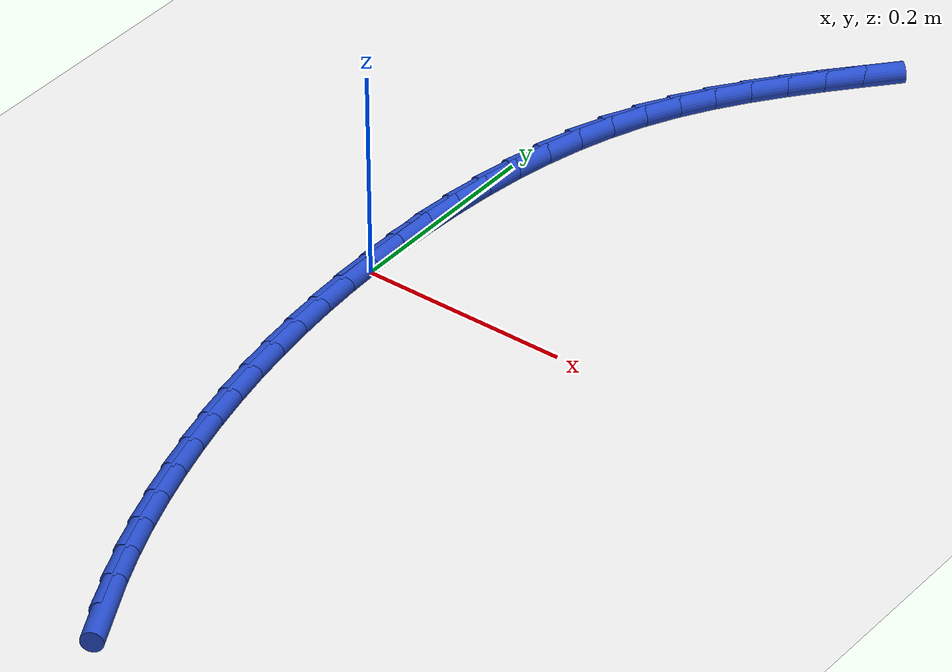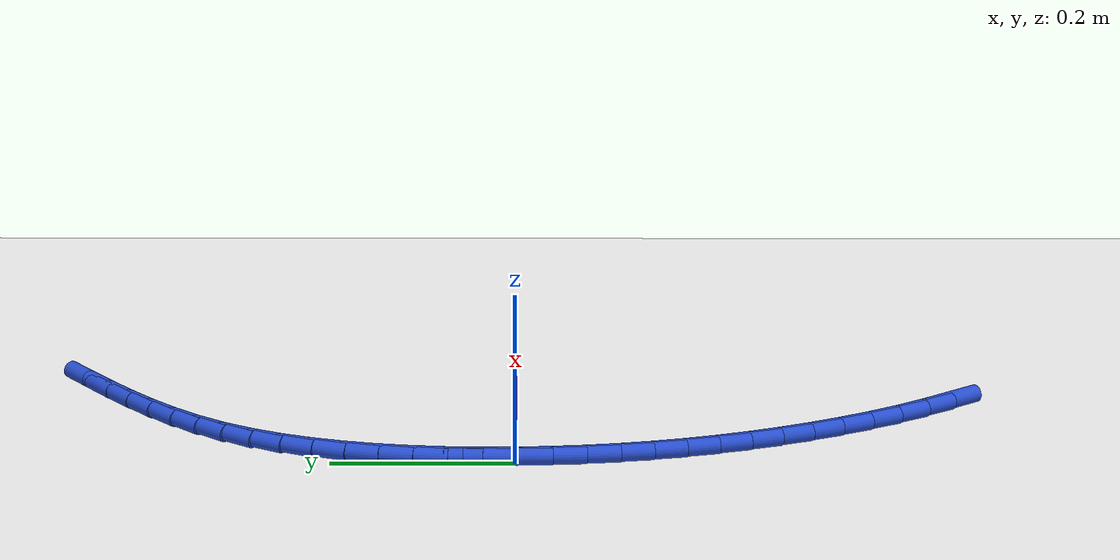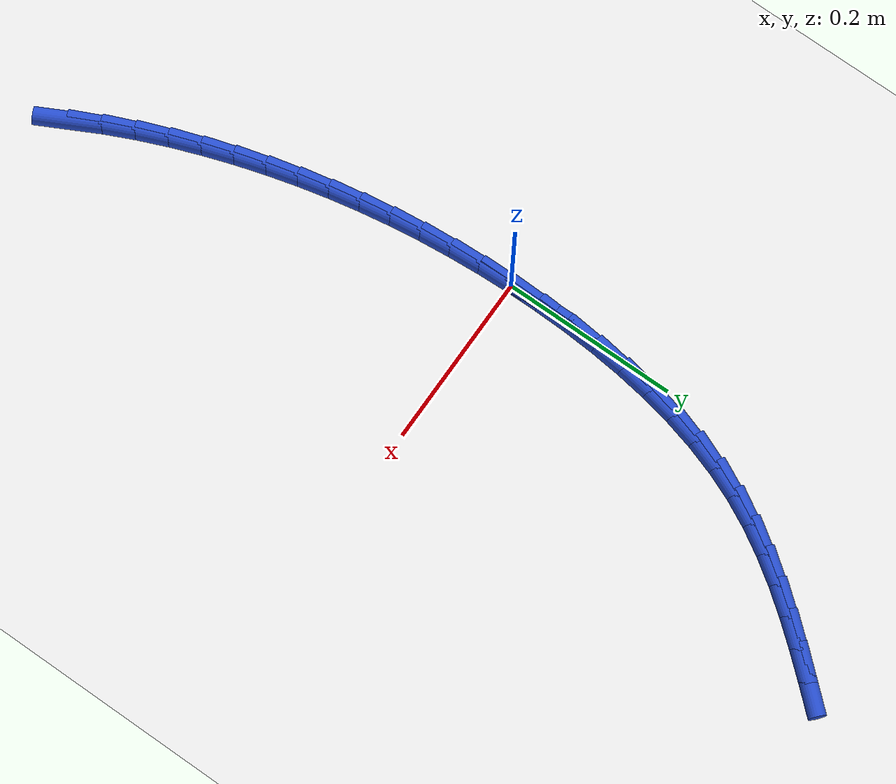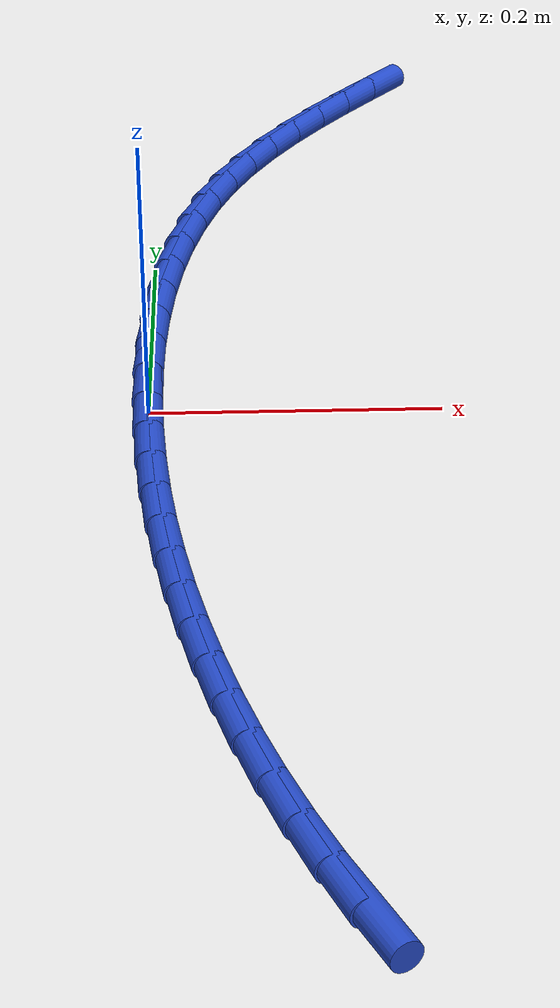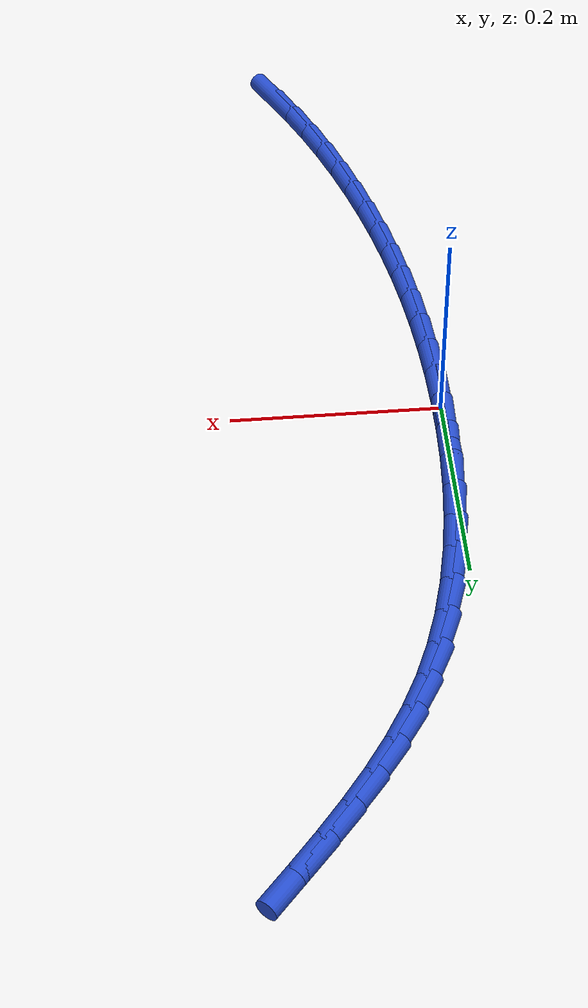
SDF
<sdf version="1.6">
 <world name="default">
  <model name="ground_plane">
   <static>1</static>
   <link name="link">
    <collision name="collision">
     <geometry><plane><normal>0 0 1</normal><size>100 100</size></plane></geometry>
     <surface><friction><ode><mu>100</mu><mu2>50</mu2></ode></friction></surface>
    </collision>
    <visual name="visual">
     <cast_shadows>0</cast_shadows>
     <geometry><plane><normal>0 0 1</normal><size>100 100</size></plane></geometry>
     <material>
      <script><uri>file://media/materials/scripts/gazebo.material</uri><name>Gazebo/WhiteGlow</name></script>
     </material>
    </visual>
   </link>
  </model>
  <model name="line">
   <link name="link_0">
    <pose>2.6020852139652106e-17 -9.71445146547012e-17 0.01 0 1.57 -1.5621831902232952</pose>
    <collision name="collision">
     <geometry><cylinder><radius>0.01</radius><length>0.08</length></cylinder></geometry>
    </collision>
    <visual name="visual">
     <material>
      <script><name>Gazebo/Blue</name><uri>file://media/materials/scripts/gazebo.material</uri></script>
     </material>
     <geometry><cylinder><radius>0.01</radius><length>0.08</length></cylinder></geometry>
    </visual>
   </link>
   <link name="link_1">
    <pose>-0.00031968977856093643 0.03711561640169112 0.01 0 1.57 1.5464420975467457</pose>
    <collision name="collision">
     <geometry><cylinder><radius>0.01</radius><length>0.08</length></cylinder></geometry>
    </collision>
    <visual name="visual">
     <material>
      <script><name>Gazebo/Blue</name><uri>file://media/materials/scripts/gazebo.material</uri></script>
     </material>
     <geometry><cylinder><radius>0.01</radius><length>0.08</length></cylinder></geometry>
    </visual>
   </link>
   <link name="link_2">
    <pose>0.0005880509570765188 0.07438065362917015 0.01 0 1.57 1.509807310604159</pose>
    <collision name="collision">
     <geometry><cylinder><radius>0.01</radius><length>0.08</length></cylinder></geometry>
    </collision>
    <visual name="visual">
     <material>
      <script><name>Gazebo/Blue</name><uri>file://media/materials/scripts/gazebo.material</uri></script>
     </material>
     <geometry><cylinder><radius>0.01</radius><length>0.08</length></cylinder></geometry>
    </visual>
   </link>
   <link name="link_3">
    <pose>0.002859856134426444 0.11158387216424501 0.01 0 1.57 1.4689970682819233</pose>
    <collision name="collision">
     <geometry><cylinder><radius>0.01</radius><length>0.08</length></cylinder></geometry>
    </collision>
    <visual name="visual">
     <material>
      <script><name>Gazebo/Blue</name><uri>file://media/materials/scripts/gazebo.material</uri></script>
     </material>
     <geometry><cylinder><radius>0.01</radius><length>0.08</length></cylinder></geometry>
    </visual>
   </link>
   <link name="link_4">
    <pose>0.006632359681002883 0.14851403248872366 0.01 0 1.57 1.4234374467433104</pose>
    <collision name="collision">
     <geometry><cylinder><radius>0.01</radius><length>0.08</length></cylinder></geometry>
    </collision>
    <visual name="visual">
     <material>
      <script><name>Gazebo/Blue</name><uri>file://media/materials/scripts/gazebo.material</uri></script>
     </material>
     <geometry><cylinder><radius>0.01</radius><length>0.08</length></cylinder></geometry>
    </visual>
   </link>
   <link name="link_5">
    <pose>0.012042195524319888 0.18495989508441416 0.01 0 1.57 1.3724935437011863</pose>
    <collision name="collision">
     <geometry><cylinder><radius>0.01</radius><length>0.08</length></cylinder></geometry>
    </collision>
    <visual name="visual">
     <material>
      <script><name>Gazebo/Blue</name><uri>file://media/materials/scripts/gazebo.material</uri></script>
     </material>
     <geometry><cylinder><radius>0.01</radius><length>0.08</length></cylinder></geometry>
    </visual>
   </link>
   <link name="link_6">
    <pose>0.01922599759189152 0.22071022043312447 0.01 0 1.57 1.3154854739663269</pose>
    <collision name="collision">
     <geometry><cylinder><radius>0.01</radius><length>0.08</length></cylinder></geometry>
    </collision>
    <visual name="visual">
     <material>
      <script><name>Gazebo/Blue</name><uri>file://media/materials/scripts/gazebo.material</uri></script>
     </material>
     <geometry><cylinder><radius>0.01</radius><length>0.08</length></cylinder></geometry>
    </visual>
   </link>
   <link name="link_7">
    <pose>0.02832039981123179 0.2555537690166625 0.01 0 1.57 1.2517222985318488</pose>
    <collision name="collision">
     <geometry><cylinder><radius>0.01</radius><length>0.08</length></cylinder></geometry>
    </collision>
    <visual name="visual">
     <material>
      <script><name>Gazebo/Blue</name><uri>file://media/materials/scripts/gazebo.material</uri></script>
     </material>
     <geometry><cylinder><radius>0.01</radius><length>0.08</length></cylinder></geometry>
    </visual>
   </link>
   <link name="link_8">
    <pose>0.0394620361098548 0.2892793013168364 0.01 0 1.57 1.180562507635391</pose>
    <collision name="collision">
     <geometry><cylinder><radius>0.01</radius><length>0.08</length></cylinder></geometry>
    </collision>
    <visual name="visual">
     <material>
      <script><name>Gazebo/Blue</name><uri>file://media/materials/scripts/gazebo.material</uri></script>
     </material>
     <geometry><cylinder><radius>0.01</radius><length>0.08</length></cylinder></geometry>
    </visual>
   </link>
   <link name="link_9">
    <pose>0.05278754041527457 0.32167557781545414 0.01 0 1.57 1.1036009828839137</pose>
    <collision name="collision">
     <geometry><cylinder><radius>0.01</radius><length>0.08</length></cylinder></geometry>
    </collision>
    <visual name="visual">
     <material>
      <script><name>Gazebo/Blue</name><uri>file://media/materials/scripts/gazebo.material</uri></script>
     </material>
     <geometry><cylinder><radius>0.01</radius><length>0.08</length></cylinder></geometry>
    </visual>
   </link>
   <link name="link_10">
    <pose>0.06838152044542657 0.35258886909075804 0.01 0 1.57 1.03238909465765</pose>
    <collision name="collision">
     <geometry><cylinder><radius>0.01</radius><length>0.08</length></cylinder></geometry>
    </collision>
    <visual name="visual">
     <material>
      <script><name>Gazebo/Blue</name><uri>file://media/materials/scripts/gazebo.material</uri></script>
     </material>
     <geometry><cylinder><radius>0.01</radius><length>0.08</length></cylinder></geometry>
    </visual>
   </link>
   <link name="link_11">
    <pose>0.0860508248733353 0.3821724823009723 0.01 0 1.57 0.9718745766253265</pose>
    <collision name="collision">
     <geometry><cylinder><radius>0.01</radius><length>0.08</length></cylinder></geometry>
    </collision>
    <visual name="visual">
     <material>
      <script><name>Gazebo/Blue</name><uri>file://media/materials/scripts/gazebo.material</uri></script>
     </material>
     <geometry><cylinder><radius>0.01</radius><length>0.08</length></cylinder></geometry>
    </visual>
   </link>
   <link name="link_12">
    <pose>0.10550998516170162 0.4106817726241794 0.01 0 1.57 0.9227875499274827</pose>
    <collision name="collision">
     <geometry><cylinder><radius>0.01</radius><length>0.08</length></cylinder></geometry>
    </collision>
    <visual name="visual">
     <material>
      <script><name>Gazebo/Blue</name><uri>file://media/materials/scripts/gazebo.material</uri></script>
     </material>
     <geometry><cylinder><radius>0.01</radius><length>0.08</length></cylinder></geometry>
    </visual>
   </link>
   <link name="link_13">
    <pose>0.12647347104322018 0.4383721634751966 0.01 0 1.57 0.8853421768963635</pose>
    <collision name="collision">
     <geometry><cylinder><radius>0.01</radius><length>0.08</length></cylinder></geometry>
    </collision>
    <visual name="visual">
     <material>
      <script><name>Gazebo/Blue</name><uri>file://media/materials/scripts/gazebo.material</uri></script>
     </material>
     <geometry><cylinder><radius>0.01</radius><length>0.08</length></cylinder></geometry>
    </visual>
   </link>
   <link name="link_14">
    <pose>0.14865575225058542 0.4654990782688404 0.01 0 1.57 0.8594262456779417</pose>
    <collision name="collision">
     <geometry><cylinder><radius>0.01</radius><length>0.08</length></cylinder></geometry>
    </collision>
    <visual name="visual">
     <material>
      <script><name>Gazebo/Blue</name><uri>file://media/materials/scripts/gazebo.material</uri></script>
     </material>
     <geometry><cylinder><radius>0.01</radius><length>0.08</length></cylinder></geometry>
    </visual>
   </link>
   <link name="link_15">
    <pose>0.17177129851649212 0.49231794041992805 0.01 0 1.57 0.8447580056597066</pose>
    <collision name="collision">
     <geometry><cylinder><radius>0.01</radius><length>0.08</length></cylinder></geometry>
    </collision>
    <visual name="visual">
     <material>
      <script><name>Gazebo/Blue</name><uri>file://media/materials/scripts/gazebo.material</uri></script>
     </material>
     <geometry><cylinder><radius>0.01</radius><length>0.08</length></cylinder></geometry>
    </visual>
   </link>
   <link name="link_176">
    <pose>0.12391349575791134 -0.4904550989265599 0.01 0 1.57 -1.0939086635733726</pose>
    <collision name="collision">
     <geometry><cylinder><radius>0.01</radius><length>0.08</length></cylinder></geometry>
    </collision>
    <visual name="visual">
     <material>
      <script><name>Gazebo/Blue</name><uri>file://media/materials/scripts/gazebo.material</uri></script>
     </material>
     <geometry><cylinder><radius>0.01</radius><length>0.08</length></cylinder></geometry>
    </visual>
   </link>
   <link name="link_177">
    <pose>0.10709152581065665 -0.4578961117356064 0.01 0 1.57 -1.137576934353253</pose>
    <collision name="collision">
     <geometry><cylinder><radius>0.01</radius><length>0.08</length></cylinder></geometry>
    </collision>
    <visual name="visual">
     <material>
      <script><name>Gazebo/Blue</name><uri>file://media/materials/scripts/gazebo.material</uri></script>
     </material>
     <geometry><cylinder><radius>0.01</radius><length>0.08</length></cylinder></geometry>
    </visual>
   </link>
   <link name="link_178">
    <pose>0.09165981349541047 -0.4245319307260332 0.01 0 1.57 -1.1776117396347838</pose>
    <collision name="collision">
     <geometry><cylinder><radius>0.01</radius><length>0.08</length></cylinder></geometry>
    </collision>
    <visual name="visual">
     <material>
      <script><name>Gazebo/Blue</name><uri>file://media/materials/scripts/gazebo.material</uri></script>
     </material>
     <geometry><cylinder><radius>0.01</radius><length>0.08</length></cylinder></geometry>
    </visual>
   </link>
   <link name="link_179">
    <pose>0.07755995354131479 -0.3905385472761876 0.01 0 1.57 -1.2143452702527975</pose>
    <collision name="collision">
     <geometry><cylinder><radius>0.01</radius><length>0.08</length></cylinder></geometry>
    </collision>
    <visual name="visual">
     <material>
      <script><name>Gazebo/Blue</name><uri>file://media/materials/scripts/gazebo.material</uri></script>
     </material>
     <geometry><cylinder><radius>0.01</radius><length>0.08</length></cylinder></geometry>
    </visual>
   </link>
   <link name="link_180">
    <pose>0.0647335406775108 -0.35609195276441574 0.01 0 1.57 -1.248093584296274</pose>
    <collision name="collision">
     <geometry><cylinder><radius>0.01</radius><length>0.08</length></cylinder></geometry>
    </collision>
    <visual name="visual">
     <material>
      <script><name>Gazebo/Blue</name><uri>file://media/materials/scripts/gazebo.material</uri></script>
     </material>
     <geometry><cylinder><radius>0.01</radius><length>0.08</length></cylinder></geometry>
    </visual>
   </link>
   <link name="link_181">
    <pose>0.05312217702499344 -0.3213681089353475 0.01 0 1.57 -1.2797915225287677</pose>
    <collision name="collision">
     <geometry><cylinder><radius>0.01</radius><length>0.08</length></cylinder></geometry>
    </collision>
    <visual name="visual">
     <material>
      <script><name>Gazebo/Blue</name><uri>file://media/materials/scripts/gazebo.material</uri></script>
     </material>
     <geometry><cylinder><radius>0.01</radius><length>0.08</length></cylinder></geometry>
    </visual>
   </link>
   <link name="link_182">
    <pose>0.04267851921907385 -0.2864986603157309 0.01 0 1.57 -1.311467852603554</pose>
    <collision name="collision">
     <geometry><cylinder><radius>0.01</radius><length>0.08</length></cylinder></geometry>
    </collision>
    <visual name="visual">
     <material>
      <script><name>Gazebo/Blue</name><uri>file://media/materials/scripts/gazebo.material</uri></script>
     </material>
     <geometry><cylinder><radius>0.01</radius><length>0.08</length></cylinder></geometry>
    </visual>
   </link>
   <link name="link_183">
    <pose>0.033388484121707085 -0.2514819121766237 0.01 0 1.57 -1.3433681105220805</pose>
    <collision name="collision">
     <geometry><cylinder><radius>0.01</radius><length>0.08</length></cylinder></geometry>
    </collision>
    <visual name="visual">
     <material>
      <script><name>Gazebo/Blue</name><uri>file://media/materials/scripts/gazebo.material</uri></script>
     </material>
     <geometry><cylinder><radius>0.01</radius><length>0.08</length></cylinder></geometry>
    </visual>
   </link>
   <link name="link_184">
    <pose>0.02524421846765959 -0.21629119441496475 0.01 0 1.57 -1.3753555588421853</pose>
    <collision name="collision">
     <geometry><cylinder><radius>0.01</radius><length>0.08</length></cylinder></geometry>
    </collision>
    <visual name="visual">
     <material>
      <script><name>Gazebo/Blue</name><uri>file://media/materials/scripts/gazebo.material</uri></script>
     </material>
     <geometry><cylinder><radius>0.01</radius><length>0.08</length></cylinder></geometry>
    </visual>
   </link>
   <link name="link_185">
    <pose>0.0182378689916978 -0.18089983692769285 0.01 0 1.57 -1.40729139646465</pose>
    <collision name="collision">
     <geometry><cylinder><radius>0.01</radius><length>0.08</length></cylinder></geometry>
    </collision>
    <visual name="visual">
     <material>
      <script><name>Gazebo/Blue</name><uri>file://media/materials/scripts/gazebo.material</uri></script>
     </material>
     <geometry><cylinder><radius>0.01</radius><length>0.08</length></cylinder></geometry>
    </visual>
   </link>
   <link name="link_186">
    <pose>0.01236158242858827 -0.14528116961174764 0.01 0 1.57 -1.439037603787175</pose>
    <collision name="collision">
     <geometry><cylinder><radius>0.01</radius><length>0.08</length></cylinder></geometry>
    </collision>
    <visual name="visual">
     <material>
      <script><name>Gazebo/Blue</name><uri>file://media/materials/scripts/gazebo.material</uri></script>
     </material>
     <geometry><cylinder><radius>0.01</radius><length>0.08</length></cylinder></geometry>
    </visual>
   </link>
   <link name="link_187">
    <pose>0.007607505513097205 -0.1094085223640665 0.01 0 1.57 -1.4704597491911835</pose>
    <collision name="collision">
     <geometry><cylinder><radius>0.01</radius><length>0.08</length></cylinder></geometry>
    </collision>
    <visual name="visual">
     <material>
      <script><name>Gazebo/Blue</name><uri>file://media/materials/scripts/gazebo.material</uri></script>
     </material>
     <geometry><cylinder><radius>0.01</radius><length>0.08</length></cylinder></geometry>
    </visual>
   </link>
   <link name="link_188">
    <pose>0.003967784979991183 -0.073255225081589 0.01 0 1.57 -1.5014296174673016</pose>
    <collision name="collision">
     <geometry><cylinder><radius>0.01</radius><length>0.08</length></cylinder></geometry>
    </collision>
    <visual name="visual">
     <material>
      <script><name>Gazebo/Blue</name><uri>file://media/materials/scripts/gazebo.material</uri></script>
     </material>
     <geometry><cylinder><radius>0.01</radius><length>0.08</length></cylinder></geometry>
    </visual>
   </link>
   <link name="link_189">
    <pose>0.001434567564036645 -0.036794607661253975 0.01 0 1.57 -1.5318275370853898</pose>
    <collision name="collision">
     <geometry><cylinder><radius>0.01</radius><length>0.08</length></cylinder></geometry>
    </collision>
    <visual name="visual">
     <material>
      <script><name>Gazebo/Blue</name><uri>file://media/materials/scripts/gazebo.material</uri></script>
     </material>
     <geometry><cylinder><radius>0.01</radius><length>0.08</length></cylinder></geometry>
    </visual>
   </link>
   <link name="link_190">
    <pose>3.903127820947816e-17 -2.983724378680108e-16 0.01 0 1.57 -1.5615443098712964</pose>
    <collision name="collision">
     <geometry><cylinder><radius>0.01</radius><length>0.08</length></cylinder></geometry>
    </collision>
    <visual name="visual">
     <material>
      <script><name>Gazebo/Blue</name><uri>file://media/materials/scripts/gazebo.material</uri></script>
     </material>
     <geometry><cylinder><radius>0.01</radius><length>0.08</length></cylinder></geometry>
    </visual>
   </link>
   <link name="link_191">
    <pose>-0.00034377097735219415 0.037155268005233215 0.01 0 1.57 -1.5615443098712967</pose>
    <collision name="collision">
     <geometry><cylinder><radius>0.01</radius><length>0.08</length></cylinder></geometry>
    </collision>
    <visual name="visual">
     <material>
      <script><name>Gazebo/Blue</name><uri>file://media/materials/scripts/gazebo.material</uri></script>
     </material>
     <geometry><cylinder><radius>0.01</radius><length>0.08</length></cylinder></geometry>
    </visual>
   </link>
  </model>
 </world>
</sdf>
